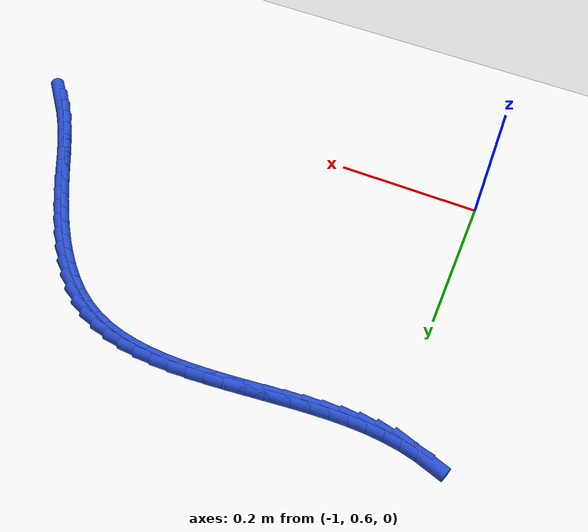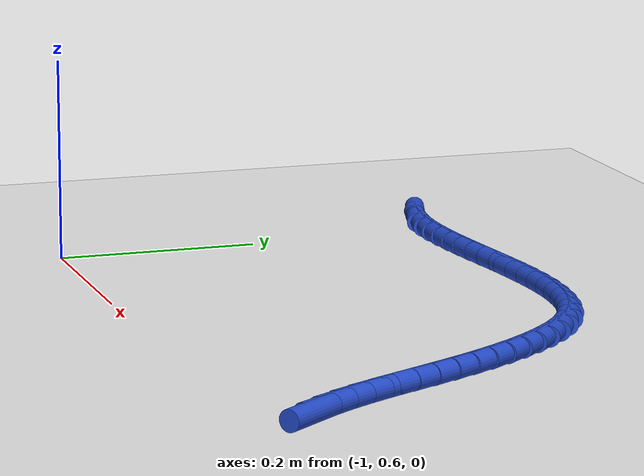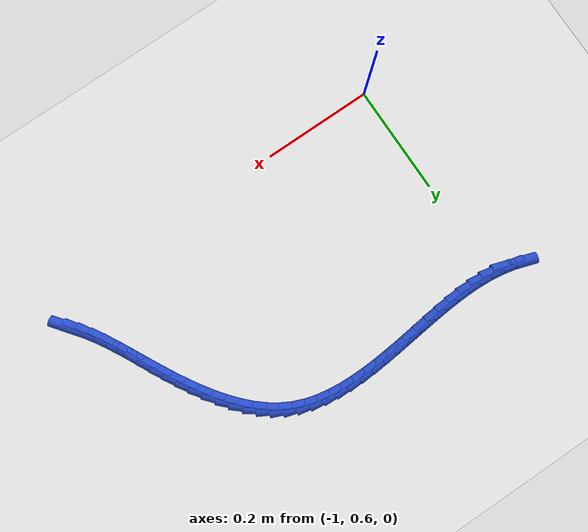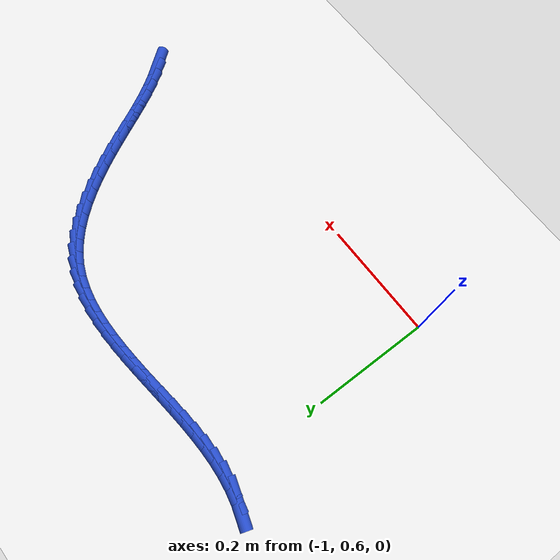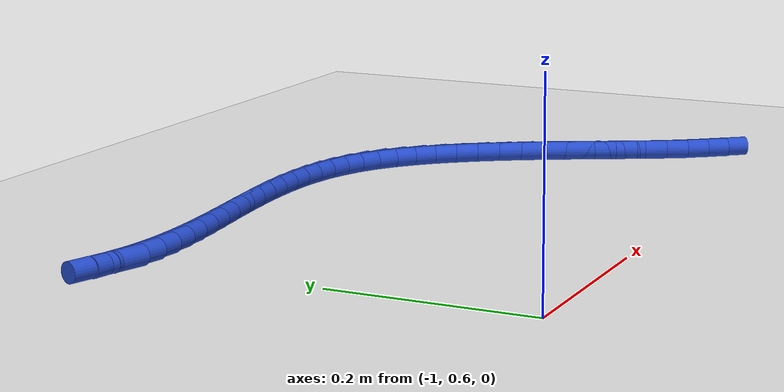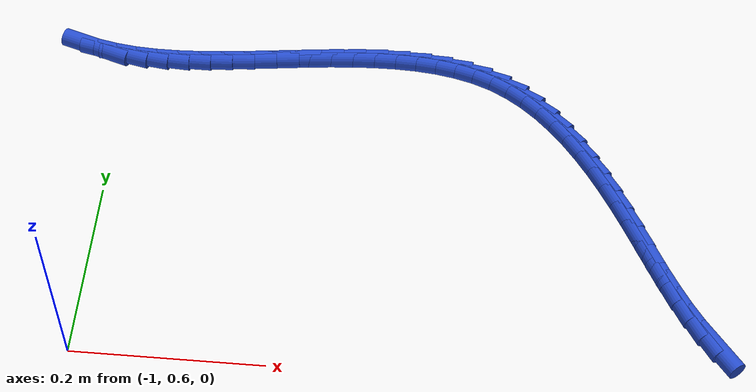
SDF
<sdf version="1.6">
 <world name="default">
  <model name="ground_plane">
   <static>1</static>
   <link name="link">
    <collision name="collision">
     <geometry><plane><normal>0 0 1</normal><size>100 100</size></plane></geometry>
     <surface><friction><ode><mu>100</mu><mu2>50</mu2></ode></friction></surface>
    </collision>
    <visual name="visual">
     <cast_shadows>0</cast_shadows>
     <geometry><plane><normal>0 0 1</normal><size>100 100</size></plane></geometry>
     <material>
      <script><uri>file://media/materials/scripts/gazebo.material</uri><name>Gazebo/WhiteGlow</name></script>
     </material>
    </visual>
   </link>
  </model>
  <model name="line">
   <link name="link_34">
    <pose>-0.3578489342899978 0.6589840176669219 0.01 0 1.57 -0.916460572727679</pose>
    <collision name="collision">
     <geometry><cylinder><radius>0.01</radius><length>0.08</length></cylinder></geometry>
    </collision>
    <visual name="visual">
     <material>
      <script><name>Gazebo/Blue</name><uri>file://media/materials/scripts/gazebo.material</uri></script>
     </material>
     <geometry><cylinder><radius>0.01</radius><length>0.08</length></cylinder></geometry>
    </visual>
   </link>
   <link name="link_35">
    <pose>-0.3716796703949959 0.6770146578434606 0.01 0 1.57 -0.9808450246990053</pose>
    <collision name="collision">
     <geometry><cylinder><radius>0.01</radius><length>0.08</length></cylinder></geometry>
    </collision>
    <visual name="visual">
     <material>
      <script><name>Gazebo/Blue</name><uri>file://media/materials/scripts/gazebo.material</uri></script>
     </material>
     <geometry><cylinder><radius>0.01</radius><length>0.08</length></cylinder></geometry>
    </visual>
   </link>
   <link name="link_36">
    <pose>-0.38441484419521005 0.6960369982166814 0.01 0 1.57 -1.0308762732187808</pose>
    <collision name="collision">
     <geometry><cylinder><radius>0.01</radius><length>0.08</length></cylinder></geometry>
    </collision>
    <visual name="visual">
     <material>
      <script><name>Gazebo/Blue</name><uri>file://media/materials/scripts/gazebo.material</uri></script>
     </material>
     <geometry><cylinder><radius>0.01</radius><length>0.08</length></cylinder></geometry>
    </visual>
   </link>
   <link name="link_37">
    <pose>-0.3963141603505799 0.7158916621287209 0.01 0 1.57 -1.0667205692190862</pose>
    <collision name="collision">
     <geometry><cylinder><radius>0.01</radius><length>0.08</length></cylinder></geometry>
    </collision>
    <visual name="visual">
     <material>
      <script><name>Gazebo/Blue</name><uri>file://media/materials/scripts/gazebo.material</uri></script>
     </material>
     <geometry><cylinder><radius>0.01</radius><length>0.08</length></cylinder></geometry>
    </visual>
   </link>
   <link name="link_38">
    <pose>-0.4076373235210451 0.7364192729217155 0.01 0 1.57 -1.0888372296079933</pose>
    <collision name="collision">
     <geometry><cylinder><radius>0.01</radius><length>0.08</length></cylinder></geometry>
    </collision>
    <visual name="visual">
     <material>
      <script><name>Gazebo/Blue</name><uri>file://media/materials/scripts/gazebo.material</uri></script>
     </material>
     <geometry><cylinder><radius>0.01</radius><length>0.08</length></cylinder></geometry>
    </visual>
   </link>
   <link name="link_39">
    <pose>-0.4186440383665456 0.7574604539378023 0.01 0 1.57 -1.0977600651861315</pose>
    <collision name="collision">
     <geometry><cylinder><radius>0.01</radius><length>0.08</length></cylinder></geometry>
    </collision>
    <visual name="visual">
     <material>
      <script><name>Gazebo/Blue</name><uri>file://media/materials/scripts/gazebo.material</uri></script>
     </material>
     <geometry><cylinder><radius>0.01</radius><length>0.08</length></cylinder></geometry>
    </visual>
   </link>
   <link name="link_40">
    <pose>-0.42959400954702076 0.7788558285191178 0.01 0 1.57 -1.0939775819097157</pose>
    <collision name="collision">
     <geometry><cylinder><radius>0.01</radius><length>0.08</length></cylinder></geometry>
    </collision>
    <visual name="visual">
     <material>
      <script><name>Gazebo/Blue</name><uri>file://media/materials/scripts/gazebo.material</uri></script>
     </material>
     <geometry><cylinder><radius>0.01</radius><length>0.08</length></cylinder></geometry>
    </visual>
   </link>
   <link name="link_41">
    <pose>-0.4407469417224104 0.8004460200077984 0.01 0 1.57 -1.0779288026242957</pose>
    <collision name="collision">
     <geometry><cylinder><radius>0.01</radius><length>0.08</length></cylinder></geometry>
    </collision>
    <visual name="visual">
     <material>
      <script><name>Gazebo/Blue</name><uri>file://media/materials/scripts/gazebo.material</uri></script>
     </material>
     <geometry><cylinder><radius>0.01</radius><length>0.08</length></cylinder></geometry>
    </visual>
   </link>
   <link name="link_42">
    <pose>-0.4523612055154255 0.822070965252481 0.01 0 1.57 -1.051876951484381</pose>
    <collision name="collision">
     <geometry><cylinder><radius>0.01</radius><length>0.08</length></cylinder></geometry>
    </collision>
    <visual name="visual">
     <material>
      <script><name>Gazebo/Blue</name><uri>file://media/materials/scripts/gazebo.material</uri></script>
     </material>
     <geometry><cylinder><radius>0.01</radius><length>0.08</length></cylinder></geometry>
    </visual>
   </link>
   <link name="link_43">
    <pose>-0.46461738413838594 0.8435305718203864 0.01 0 1.57 -1.0185852577578811</pose>
    <collision name="collision">
     <geometry><cylinder><radius>0.01</radius><length>0.08</length></cylinder></geometry>
    </collision>
    <visual name="visual">
     <material>
      <script><name>Gazebo/Blue</name><uri>file://media/materials/scripts/gazebo.material</uri></script>
     </material>
     <geometry><cylinder><radius>0.01</radius><length>0.08</length></cylinder></geometry>
    </visual>
   </link>
   <link name="link_44">
    <pose>-0.4775767692727611 0.8645633600409448 0.01 0 1.57 -0.9775618687917156</pose>
    <collision name="collision">
     <geometry><cylinder><radius>0.01</radius><length>0.08</length></cylinder></geometry>
    </collision>
    <visual name="visual">
     <material>
      <script><name>Gazebo/Blue</name><uri>file://media/materials/scripts/gazebo.material</uri></script>
     </material>
     <geometry><cylinder><radius>0.01</radius><length>0.08</length></cylinder></geometry>
    </visual>
   </link>
   <link name="link_45">
    <pose>-0.49129053900137 0.8849026458013198 0.01 0 1.57 -0.9277905162438524</pose>
    <collision name="collision">
     <geometry><cylinder><radius>0.01</radius><length>0.08</length></cylinder></geometry>
    </collision>
    <visual name="visual">
     <material>
      <script><name>Gazebo/Blue</name><uri>file://media/materials/scripts/gazebo.material</uri></script>
     </material>
     <geometry><cylinder><radius>0.01</radius><length>0.08</length></cylinder></geometry>
    </visual>
   </link>
   <link name="link_46">
    <pose>-0.5058098714070313 0.9042817449886734 0.01 0 1.57 -0.8680100710075115</pose>
    <collision name="collision">
     <geometry><cylinder><radius>0.01</radius><length>0.08</length></cylinder></geometry>
    </collision>
    <visual name="visual">
     <material>
      <script><name>Gazebo/Blue</name><uri>file://media/materials/scripts/gazebo.material</uri></script>
     </material>
     <geometry><cylinder><radius>0.01</radius><length>0.08</length></cylinder></geometry>
    </visual>
   </link>
   <link name="link_47">
    <pose>-0.521185944572564 0.9224339734901694 0.01 0 1.57 -0.7967714245222793</pose>
    <collision name="collision">
     <geometry><cylinder><radius>0.01</radius><length>0.08</length></cylinder></geometry>
    </collision>
    <visual name="visual">
     <material>
      <script><name>Gazebo/Blue</name><uri>file://media/materials/scripts/gazebo.material</uri></script>
     </material>
     <geometry><cylinder><radius>0.01</radius><length>0.08</length></cylinder></geometry>
    </visual>
   </link>
   <link name="link_48">
    <pose>-0.5374699365807867 0.9390926471929701 0.01 0 1.57 -0.7125793245817673</pose>
    <collision name="collision">
     <geometry><cylinder><radius>0.01</radius><length>0.08</length></cylinder></geometry>
    </collision>
    <visual name="visual">
     <material>
      <script><name>Gazebo/Blue</name><uri>file://media/materials/scripts/gazebo.material</uri></script>
     </material>
     <geometry><cylinder><radius>0.01</radius><length>0.08</length></cylinder></geometry>
    </visual>
   </link>
   <link name="link_49">
    <pose>-0.5547130255145186 0.9539910819842389 0.01 0 1.57 -0.6141795525885984</pose>
    <collision name="collision">
     <geometry><cylinder><radius>0.01</radius><length>0.08</length></cylinder></geometry>
    </collision>
    <visual name="visual">
     <material>
      <script><name>Gazebo/Blue</name><uri>file://media/materials/scripts/gazebo.material</uri></script>
     </material>
     <geometry><cylinder><radius>0.01</radius><length>0.08</length></cylinder></geometry>
    </visual>
   </link>
   <link name="link_50">
    <pose>-0.5729663894565782 0.9668625937511383 0.01 0 1.57 -0.5012842505350611</pose>
    <collision name="collision">
     <geometry><cylinder><radius>0.01</radius><length>0.08</length></cylinder></geometry>
    </collision>
    <visual name="visual">
     <material>
      <script><name>Gazebo/Blue</name><uri>file://media/materials/scripts/gazebo.material</uri></script>
     </material>
     <geometry><cylinder><radius>0.01</radius><length>0.08</length></cylinder></geometry>
    </visual>
   </link>
   <link name="link_51">
    <pose>-0.592279555345757 0.9774456522847644 0.01 0 1.57 -0.3844899023576935</pose>
    <collision name="collision">
     <geometry><cylinder><radius>0.01</radius><length>0.08</length></cylinder></geometry>
    </collision>
    <visual name="visual">
     <material>
      <script><name>Gazebo/Blue</name><uri>file://media/materials/scripts/gazebo.material</uri></script>
     </material>
     <geometry><cylinder><radius>0.01</radius><length>0.08</length></cylinder></geometry>
    </visual>
   </link>
   <link name="link_52">
    <pose>-0.6126366952544277 0.9856827269653262 0.01 0 1.57 -0.27895316610653775</pose>
    <collision name="collision">
     <geometry><cylinder><radius>0.01</radius><length>0.08</length></cylinder></geometry>
    </collision>
    <visual name="visual">
     <material>
      <script><name>Gazebo/Blue</name><uri>file://media/materials/scripts/gazebo.material</uri></script>
     </material>
     <geometry><cylinder><radius>0.01</radius><length>0.08</length></cylinder></geometry>
    </visual>
   </link>
   <link name="link_53">
    <pose>-0.6339364018168482 0.9917834160215503 0.01 0 1.57 -0.18716473958073807</pose>
    <collision name="collision">
     <geometry><cylinder><radius>0.01</radius><length>0.08</length></cylinder></geometry>
    </collision>
    <visual name="visual">
     <material>
      <script><name>Gazebo/Blue</name><uri>file://media/materials/scripts/gazebo.material</uri></script>
     </material>
     <geometry><cylinder><radius>0.01</radius><length>0.08</length></cylinder></geometry>
    </visual>
   </link>
   <link name="link_54">
    <pose>-0.6560714792130904 0.9959753858435743 0.01 0 1.57 -0.10938489917740066</pose>
    <collision name="collision">
     <geometry><cylinder><radius>0.01</radius><length>0.08</length></cylinder></geometry>
    </collision>
    <visual name="visual">
     <material>
      <script><name>Gazebo/Blue</name><uri>file://media/materials/scripts/gazebo.material</uri></script>
     </material>
     <geometry><cylinder><radius>0.01</radius><length>0.08</length></cylinder></geometry>
    </visual>
   </link>
   <link name="link_55">
    <pose>-0.6789347316232276 0.998486302821537 0.01 0 1.57 -0.04500111296149951</pose>
    <collision name="collision">
     <geometry><cylinder><radius>0.01</radius><length>0.08</length></cylinder></geometry>
    </collision>
    <visual name="visual">
     <material>
      <script><name>Gazebo/Blue</name><uri>file://media/materials/scripts/gazebo.material</uri></script>
     </material>
     <geometry><cylinder><radius>0.01</radius><length>0.08</length></cylinder></geometry>
    </visual>
   </link>
   <link name="link_56">
    <pose>-0.7024189632273317 0.9995438333455768 0.01 0 1.57 0.007008362409394319</pose>
    <collision name="collision">
     <geometry><cylinder><radius>0.01</radius><length>0.08</length></cylinder></geometry>
    </collision>
    <visual name="visual">
     <material>
      <script><name>Gazebo/Blue</name><uri>file://media/materials/scripts/gazebo.material</uri></script>
     </material>
     <geometry><cylinder><radius>0.01</radius><length>0.08</length></cylinder></geometry>
    </visual>
   </link>
   <link name="link_57">
    <pose>-0.7264169782054747 0.9993756438058317 0.01 0 1.57 0.047751511290795634</pose>
    <collision name="collision">
     <geometry><cylinder><radius>0.01</radius><length>0.08</length></cylinder></geometry>
    </collision>
    <visual name="visual">
     <material>
      <script><name>Gazebo/Blue</name><uri>file://media/materials/scripts/gazebo.material</uri></script>
     </material>
     <geometry><cylinder><radius>0.01</radius><length>0.08</length></cylinder></geometry>
    </visual>
   </link>
   <link name="link_58">
    <pose>-0.750821580737729 0.9982094005924401 0.01 0 1.57 0.07823341582187818</pose>
    <collision name="collision">
     <geometry><cylinder><radius>0.01</radius><length>0.08</length></cylinder></geometry>
    </collision>
    <visual name="visual">
     <material>
      <script><name>Gazebo/Blue</name><uri>file://media/materials/scripts/gazebo.material</uri></script>
     </material>
     <geometry><cylinder><radius>0.01</radius><length>0.08</length></cylinder></geometry>
    </visual>
   </link>
   <link name="link_59">
    <pose>-0.7755255750041672 0.9962727700955406 0.01 0 1.57 0.09926030155038158</pose>
    <collision name="collision">
     <geometry><cylinder><radius>0.01</radius><length>0.08</length></cylinder></geometry>
    </collision>
    <visual name="visual">
     <material>
      <script><name>Gazebo/Blue</name><uri>file://media/materials/scripts/gazebo.material</uri></script>
     </material>
     <geometry><cylinder><radius>0.01</radius><length>0.08</length></cylinder></geometry>
    </visual>
   </link>
   <link name="link_60">
    <pose>-0.8004217651848617 0.9937934187052713 0.01 0 1.57 0.111397309688451</pose>
    <collision name="collision">
     <geometry><cylinder><radius>0.01</radius><length>0.08</length></cylinder></geometry>
    </collision>
    <visual name="visual">
     <material>
      <script><name>Gazebo/Blue</name><uri>file://media/materials/scripts/gazebo.material</uri></script>
     </material>
     <geometry><cylinder><radius>0.01</radius><length>0.08</length></cylinder></geometry>
    </visual>
   </link>
   <link name="link_61">
    <pose>-0.8254029554598843 0.9909990128117703 0.01 0 1.57 0.11495212562805629</pose>
    <collision name="collision">
     <geometry><cylinder><radius>0.01</radius><length>0.08</length></cylinder></geometry>
    </collision>
    <visual name="visual">
     <material>
      <script><name>Gazebo/Blue</name><uri>file://media/materials/scripts/gazebo.material</uri></script>
     </material>
     <geometry><cylinder><radius>0.01</radius><length>0.08</length></cylinder></geometry>
    </visual>
   </link>
   <link name="link_62">
    <pose>-0.8503619500093078 0.9881172188051762 0.01 0 1.57 0.10990889441946415</pose>
    <collision name="collision">
     <geometry><cylinder><radius>0.01</radius><length>0.08</length></cylinder></geometry>
    </collision>
    <visual name="visual">
     <material>
      <script><name>Gazebo/Blue</name><uri>file://media/materials/scripts/gazebo.material</uri></script>
     </material>
     <geometry><cylinder><radius>0.01</radius><length>0.08</length></cylinder></geometry>
    </visual>
   </link>
   <link name="link_63">
    <pose>-0.8751955513953833 0.9853767412777447 0.01 0 1.57 0.09559367824908314</pose>
    <collision name="collision">
     <geometry><cylinder><radius>0.01</radius><length>0.08</length></cylinder></geometry>
    </collision>
    <visual name="visual">
     <material>
      <script><name>Gazebo/Blue</name><uri>file://media/materials/scripts/gazebo.material</uri></script>
     </material>
     <geometry><cylinder><radius>0.01</radius><length>0.08</length></cylinder></geometry>
    </visual>
   </link>
   <link name="link_64">
    <pose>-0.8998320131415078 0.9830144512382908 0.01 0 1.57 0.07137949419103348</pose>
    <collision name="collision">
     <geometry><cylinder><radius>0.01</radius><length>0.08</length></cylinder></geometry>
    </collision>
    <visual name="visual">
     <material>
      <script><name>Gazebo/Blue</name><uri>file://media/materials/scripts/gazebo.material</uri></script>
     </material>
     <geometry><cylinder><radius>0.01</radius><length>0.08</length></cylinder></geometry>
    </visual>
   </link>
   <link name="link_65">
    <pose>-0.9242144647584933 0.9812710823283006 0.01 0 1.57 0.036694373860054606</pose>
    <collision name="collision">
     <geometry><cylinder><radius>0.01</radius><length>0.08</length></cylinder></geometry>
    </collision>
    <visual name="visual">
     <material>
      <script><name>Gazebo/Blue</name><uri>file://media/materials/scripts/gazebo.material</uri></script>
     </material>
     <geometry><cylinder><radius>0.01</radius><length>0.08</length></cylinder></geometry>
    </visual>
   </link>
   <link name="link_66">
    <pose>-0.9482861243501449 0.9803873911929206 0.01 0 1.57 -0.00914345515145464</pose>
    <collision name="collision">
     <geometry><cylinder><radius>0.01</radius><length>0.08</length></cylinder></geometry>
    </collision>
    <visual name="visual">
     <material>
      <script><name>Gazebo/Blue</name><uri>file://media/materials/scripts/gazebo.material</uri></script>
     </material>
     <geometry><cylinder><radius>0.01</radius><length>0.08</length></cylinder></geometry>
    </visual>
   </link>
   <link name="link_67">
    <pose>-0.9719902100202689 0.9806041344772984 0.01 0 1.57 -0.06682271658181455</pose>
    <collision name="collision">
     <geometry><cylinder><radius>0.01</radius><length>0.08</length></cylinder></geometry>
    </collision>
    <visual name="visual">
     <material>
      <script><name>Gazebo/Blue</name><uri>file://media/materials/scripts/gazebo.material</uri></script>
     </material>
     <geometry><cylinder><radius>0.01</radius><length>0.08</length></cylinder></geometry>
    </visual>
   </link>
   <link name="link_68">
    <pose>-0.9952699398726703 0.9821620688265811 0.01 0 1.57 -0.1368616544842464</pose>
    <collision name="collision">
     <geometry><cylinder><radius>0.01</radius><length>0.08</length></cylinder></geometry>
    </collision>
    <visual name="visual">
     <material>
      <script><name>Gazebo/Blue</name><uri>file://media/materials/scripts/gazebo.material</uri></script>
     </material>
     <geometry><cylinder><radius>0.01</radius><length>0.08</length></cylinder></geometry>
    </visual>
   </link>
   <link name="link_69">
    <pose>-1.018068532011156 0.985301950885916 0.01 0 1.57 -0.2193439438538504</pose>
    <collision name="collision">
     <geometry><cylinder><radius>0.01</radius><length>0.08</length></cylinder></geometry>
    </collision>
    <visual name="visual">
     <material>
      <script><name>Gazebo/Blue</name><uri>file://media/materials/scripts/gazebo.material</uri></script>
     </material>
     <geometry><cylinder><radius>0.01</radius><length>0.08</length></cylinder></geometry>
    </visual>
   </link>
   <link name="link_70">
    <pose>-1.0403292045395311 0.9902645373004503 0.01 0 1.57 -0.3135891630760845</pose>
    <collision name="collision">
     <geometry><cylinder><radius>0.01</radius><length>0.08</length></cylinder></geometry>
    </collision>
    <visual name="visual">
     <material>
      <script><name>Gazebo/Blue</name><uri>file://media/materials/scripts/gazebo.material</uri></script>
     </material>
     <geometry><cylinder><radius>0.01</radius><length>0.08</length></cylinder></geometry>
    </visual>
   </link>
  </model>
 </world>
</sdf>
